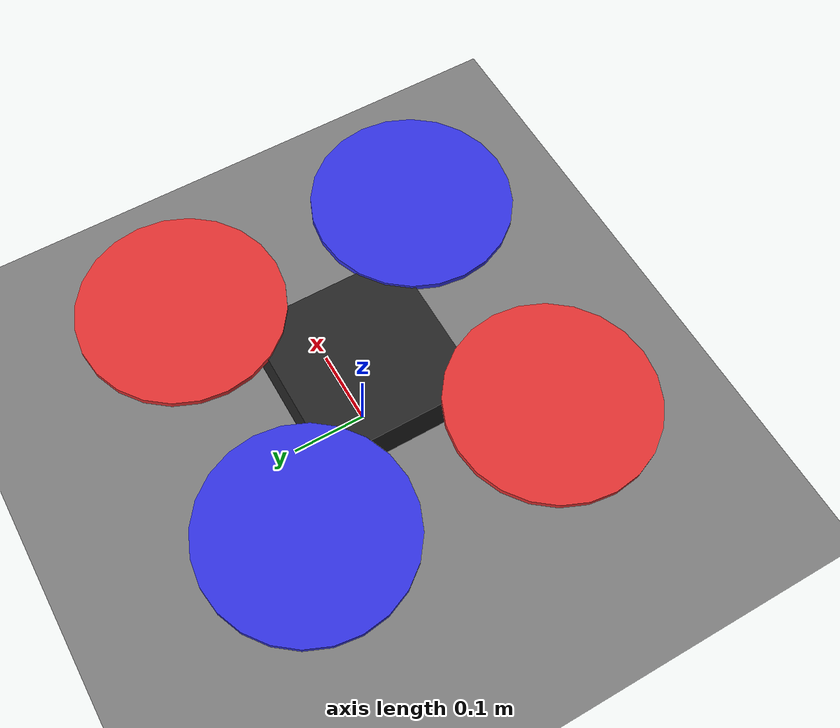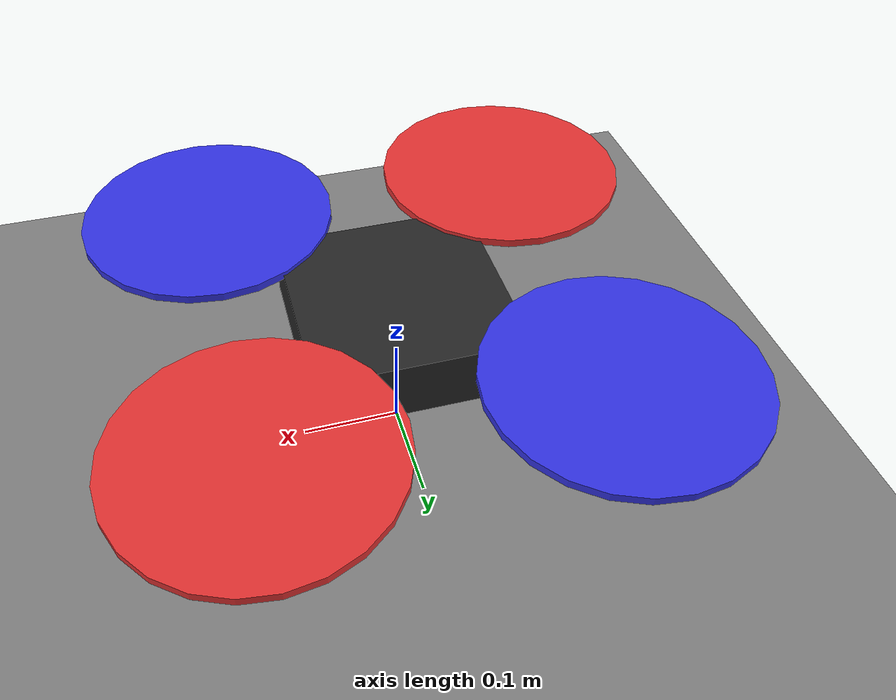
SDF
<?xml version="1.0" ?>
<sdf version="1.9">
  <world name="fx450_test">

    <physics name="1ms" type="ignored">
      <max_step_size>0.001</max_step_size>
      <real_time_factor>1.0</real_time_factor>
    </physics>

    <plugin filename="gz-sim-physics-system" name="gz::sim::systems::Physics"/>
    <plugin filename="gz-sim-scene-broadcaster-system" name="gz::sim::systems::SceneBroadcaster"/>
    <plugin filename="gz-sim-user-commands-system" name="gz::sim::systems::UserCommands"/>

    <light type="directional" name="sun">
      <cast_shadows>true</cast_shadows>
      <pose>0 0 10 0 0 0</pose>
      <diffuse>1 1 1 1</diffuse>
      <specular>0.5 0.5 0.5 1</specular>
      <direction>-0.5 0.1 -0.9</direction>
    </light>

    <model name="ground_plane">
      <static>true</static>
      <link name="link">
        <collision name="collision">
          <geometry><plane><normal>0 0 1</normal><size>50 50</size></plane></geometry>
        </collision>
        <visual name="visual">
          <geometry><plane><normal>0 0 1</normal><size>50 50</size></plane></geometry>
          <material><ambient>0.3 0.3 0.3 1</ambient><diffuse>0.5 0.5 0.5 1</diffuse></material>
        </visual>
      </link>
    </model>

    <!-- ============ FX450 드론 ============ -->
    <model name="fx450">
      <pose>0 0 0.15 0 0 0</pose>
      <self_collide>false</self_collide>

      <!-- 바디: 질량 대부분(1.0 kg). 나머지는 로터 4개에 분배 → 합 1.2726 kg.
           로터가 팔끝 위치에서 조립관성을 자동으로 만들어줌(Gazebo가 합산). -->
      <link name="base_link">
        <inertial>
          <mass>1.0</mass>
          <inertia>
            <ixx>0.003633</ixx><iyy>0.003633</iyy><izz>0.006667</izz>
            <ixy>0</ixy><ixz>0</ixz><iyz>0</iyz>
          </inertia>
        </inertial>
        <visual name="body">
          <geometry><box><size>0.2 0.2 0.06</size></box></geometry>
          <material><ambient>0.1 0.1 0.1 1</ambient><diffuse>0.15 0.15 0.15 1</diffuse></material>
        </visual>
        <collision name="body_col">
          <geometry><box><size>0.2 0.2 0.06</size></box></geometry>
        </collision>
        <visual name="arm_fr"><pose>0.08 0.08 0 0 1.5708 0.7854</pose><geometry><cylinder><radius>0.008</radius><length>0.225</length></cylinder></geometry><material><diffuse>0.2 0.2 0.2 1</diffuse></material></visual>
        <visual name="arm_rl"><pose>-0.08 -0.08 0 0 1.5708 0.7854</pose><geometry><cylinder><radius>0.008</radius><length>0.225</length></cylinder></geometry><material><diffuse>0.2 0.2 0.2 1</diffuse></material></visual>
        <visual name="arm_fl"><pose>-0.08 0.08 0 0 1.5708 -0.7854</pose><geometry><cylinder><radius>0.008</radius><length>0.225</length></cylinder></geometry><material><diffuse>0.2 0.2 0.2 1</diffuse></material></visual>
        <visual name="arm_rr"><pose>0.08 -0.08 0 0 1.5708 -0.7854</pose><geometry><cylinder><radius>0.008</radius><length>0.225</length></cylinder></geometry><material><diffuse>0.2 0.2 0.2 1</diffuse></material></visual>
      </link>

      <!-- 로터 4개: 각 0.068 kg, 얇은 디스크(prop 반경 0.127). 위치가 곧 팔길이(±0.159).
           배치(위에서): 0=전우(FR) 1=후좌(RL) 2=전좌(FL) 3=후우(RR) -->
      <link name="rotor_0">
        <pose>0.159 0.159 0.03 0 0 0</pose>
        <inertial><mass>0.068</mass><inertia><ixx>0.000274</ixx><iyy>0.000274</iyy><izz>0.000548</izz><ixy>0</ixy><ixz>0</ixz><iyz>0</iyz></inertia></inertial>
        <visual name="v"><geometry><cylinder><radius>0.127</radius><length>0.008</length></cylinder></geometry><material><ambient>0.8 0.2 0.2 1</ambient><diffuse>0.9 0.2 0.2 1</diffuse></material></visual>
      </link>
      <link name="rotor_1">
        <pose>-0.159 -0.159 0.03 0 0 0</pose>
        <inertial><mass>0.068</mass><inertia><ixx>0.000274</ixx><iyy>0.000274</iyy><izz>0.000548</izz><ixy>0</ixy><ixz>0</ixz><iyz>0</iyz></inertia></inertial>
        <visual name="v"><geometry><cylinder><radius>0.127</radius><length>0.008</length></cylinder></geometry><material><ambient>0.8 0.2 0.2 1</ambient><diffuse>0.9 0.2 0.2 1</diffuse></material></visual>
      </link>
      <link name="rotor_2">
        <pose>-0.159 0.159 0.03 0 0 0</pose>
        <inertial><mass>0.068</mass><inertia><ixx>0.000274</ixx><iyy>0.000274</iyy><izz>0.000548</izz><ixy>0</ixy><ixz>0</ixz><iyz>0</iyz></inertia></inertial>
        <visual name="v"><geometry><cylinder><radius>0.127</radius><length>0.008</length></cylinder></geometry><material><ambient>0.2 0.2 0.8 1</ambient><diffuse>0.2 0.2 0.9 1</diffuse></material></visual>
      </link>
      <link name="rotor_3">
        <pose>0.159 -0.159 0.03 0 0 0</pose>
        <inertial><mass>0.068</mass><inertia><ixx>0.000274</ixx><iyy>0.000274</iyy><izz>0.000548</izz><ixy>0</ixy><ixz>0</ixz><iyz>0</iyz></inertia></inertial>
        <visual name="v"><geometry><cylinder><radius>0.127</radius><length>0.008</length></cylinder></geometry><material><ambient>0.2 0.2 0.8 1</ambient><diffuse>0.2 0.2 0.9 1</diffuse></material></visual>
      </link>

      <joint name="rotor_0_joint" type="revolute"><parent>base_link</parent><child>rotor_0</child><axis><xyz>0 0 1</xyz><limit><lower>-1e16</lower><upper>1e16</upper></limit></axis></joint>
      <joint name="rotor_1_joint" type="revolute"><parent>base_link</parent><child>rotor_1</child><axis><xyz>0 0 1</xyz><limit><lower>-1e16</lower><upper>1e16</upper></limit></axis></joint>
      <joint name="rotor_2_joint" type="revolute"><parent>base_link</parent><child>rotor_2</child><axis><xyz>0 0 1</xyz><limit><lower>-1e16</lower><upper>1e16</upper></limit></axis></joint>
      <joint name="rotor_3_joint" type="revolute"><parent>base_link</parent><child>rotor_3</child><axis><xyz>0 0 1</xyz><limit><lower>-1e16</lower><upper>1e16</upper></limit></axis></joint>

      <plugin filename="gz-sim-multicopter-motor-model-system" name="gz::sim::systems::MulticopterMotorModel">
        <robotNamespace>fx450</robotNamespace><jointName>rotor_0_joint</jointName><linkName>rotor_0</linkName>
        <turningDirection>ccw</turningDirection>
        <timeConstantUp>0.02</timeConstantUp><timeConstantDown>0.02</timeConstantDown>
        <maxRotVelocity>1000.0</maxRotVelocity>
        <motorConstant>6.37e-06</motorConstant>
        <momentConstant>0.016</momentConstant>
        <commandSubTopic>command/motor_speed</commandSubTopic>
        <actuator_number>0</actuator_number>
        <rotorDragCoefficient>8.06e-05</rotorDragCoefficient><rollingMomentCoefficient>1e-06</rollingMomentCoefficient>
        <motorType>velocity</motorType>
      </plugin>
      <plugin filename="gz-sim-multicopter-motor-model-system" name="gz::sim::systems::MulticopterMotorModel">
        <robotNamespace>fx450</robotNamespace><jointName>rotor_1_joint</jointName><linkName>rotor_1</linkName>
        <turningDirection>ccw</turningDirection>
        <timeConstantUp>0.02</timeConstantUp><timeConstantDown>0.02</timeConstantDown>
        <maxRotVelocity>1000.0</maxRotVelocity>
        <motorConstant>6.37e-06</motorConstant><momentConstant>0.016</momentConstant>
        <commandSubTopic>command/motor_speed</commandSubTopic>
        <actuator_number>1</actuator_number>
        <rotorDragCoefficient>8.06e-05</rotorDragCoefficient><rollingMomentCoefficient>1e-06</rollingMomentCoefficient>
        <motorType>velocity</motorType>
      </plugin>
      <plugin filename="gz-sim-multicopter-motor-model-system" name="gz::sim::systems::MulticopterMotorModel">
        <robotNamespace>fx450</robotNamespace><jointName>rotor_2_joint</jointName><linkName>rotor_2</linkName>
        <turningDirection>cw</turningDirection>
        <timeConstantUp>0.02</timeConstantUp><timeConstantDown>0.02</timeConstantDown>
        <maxRotVelocity>1000.0</maxRotVelocity>
        <motorConstant>6.37e-06</motorConstant><momentConstant>0.016</momentConstant>
        <commandSubTopic>command/motor_speed</commandSubTopic>
        <actuator_number>2</actuator_number>
        <rotorDragCoefficient>8.06e-05</rotorDragCoefficient><rollingMomentCoefficient>1e-06</rollingMomentCoefficient>
        <motorType>velocity</motorType>
      </plugin>
      <plugin filename="gz-sim-multicopter-motor-model-system" name="gz::sim::systems::MulticopterMotorModel">
        <robotNamespace>fx450</robotNamespace><jointName>rotor_3_joint</jointName><linkName>rotor_3</linkName>
        <turningDirection>cw</turningDirection>
        <timeConstantUp>0.02</timeConstantUp><timeConstantDown>0.02</timeConstantDown>
        <maxRotVelocity>1000.0</maxRotVelocity>
        <motorConstant>6.37e-06</motorConstant><momentConstant>0.016</momentConstant>
        <commandSubTopic>command/motor_speed</commandSubTopic>
        <actuator_number>3</actuator_number>
        <rotorDragCoefficient>8.06e-05</rotorDragCoefficient><rollingMomentCoefficient>1e-06</rollingMomentCoefficient>
        <motorType>velocity</motorType>
      </plugin>
    </model>

  </world>
</sdf>
